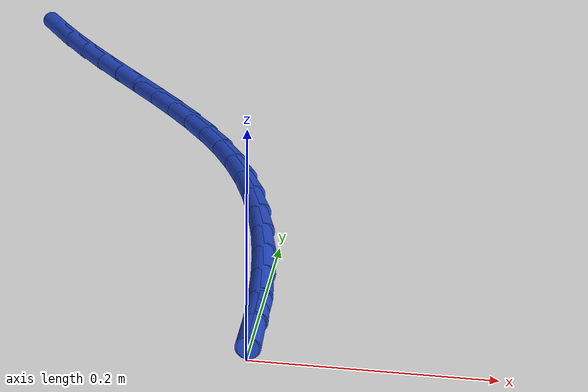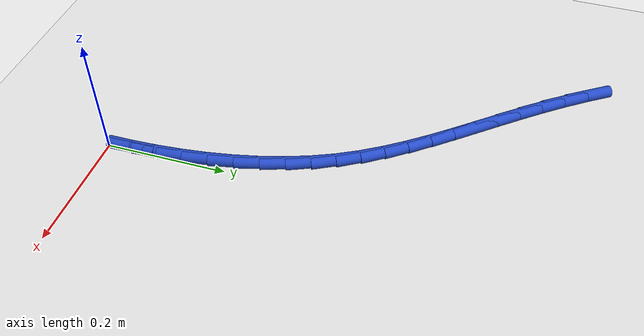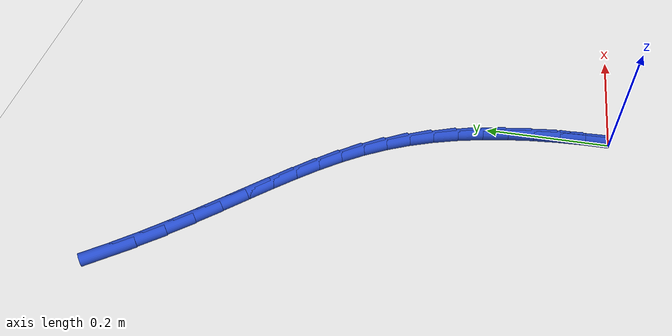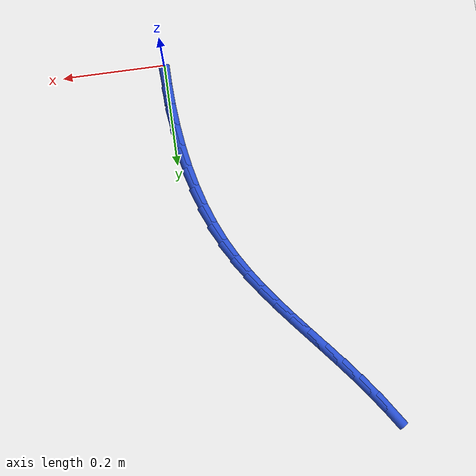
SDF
<sdf version="1.6">
 <world name="default">
  <model name="ground_plane">
   <static>1</static>
   <link name="link">
    <collision name="collision">
     <geometry><plane><normal>0 0 1</normal><size>100 100</size></plane></geometry>
     <surface><friction><ode><mu>100</mu><mu2>50</mu2></ode></friction></surface>
    </collision>
    <visual name="visual">
     <cast_shadows>0</cast_shadows>
     <geometry><plane><normal>0 0 1</normal><size>100 100</size></plane></geometry>
     <material>
      <script><uri>file://media/materials/scripts/gazebo.material</uri><name>Gazebo/WhiteGlow</name></script>
     </material>
    </visual>
   </link>
  </model>
  <model name="line">
   <link name="link_1">
    <pose>-0.00030403188105106426 0.04229881806253479 0.01 0 1.57 -1.5273704567349236</pose>
    <collision name="collision">
     <geometry><cylinder><radius>0.01</radius><length>0.08</length></cylinder></geometry>
    </collision>
    <visual name="visual">
     <material>
      <script><name>Gazebo/Blue</name><uri>file://media/materials/scripts/gazebo.material</uri></script>
     </material>
     <geometry><cylinder><radius>0.01</radius><length>0.08</length></cylinder></geometry>
    </visual>
   </link>
   <link name="link_2">
    <pose>-0.002140272123697122 0.08455671250576582 0.01 0 1.57 -1.4880241802549388</pose>
    <collision name="collision">
     <geometry><cylinder><radius>0.01</radius><length>0.08</length></cylinder></geometry>
    </collision>
    <visual name="visual">
     <material>
      <script><name>Gazebo/Blue</name><uri>file://media/materials/scripts/gazebo.material</uri></script>
     </material>
     <geometry><cylinder><radius>0.01</radius><length>0.08</length></cylinder></geometry>
    </visual>
   </link>
   <link name="link_3">
    <pose>-0.005625227665629827 0.12656351440490687 0.01 0 1.57 -1.4450910302844981</pose>
    <collision name="collision">
     <geometry><cylinder><radius>0.01</radius><length>0.08</length></cylinder></geometry>
    </collision>
    <visual name="visual">
     <material>
      <script><name>Gazebo/Blue</name><uri>file://media/materials/scripts/gazebo.material</uri></script>
     </material>
     <geometry><cylinder><radius>0.01</radius><length>0.08</length></cylinder></geometry>
    </visual>
   </link>
   <link name="link_4">
    <pose>-0.010875405444540843 0.1681090548351718 0.01 0 1.57 -1.398050688930605</pose>
    <collision name="collision">
     <geometry><cylinder><radius>0.01</radius><length>0.08</length></cylinder></geometry>
    </collision>
    <visual name="visual">
     <material>
      <script><name>Gazebo/Blue</name><uri>file://media/materials/scripts/gazebo.material</uri></script>
     </material>
     <geometry><cylinder><radius>0.01</radius><length>0.08</length></cylinder></geometry>
    </visual>
   </link>
   <link name="link_5">
    <pose>-0.018007312398121825 0.20898316487177454 0.01 0 1.57 -1.3463466222002347</pose>
    <collision name="collision">
     <geometry><cylinder><radius>0.01</radius><length>0.08</length></cylinder></geometry>
    </collision>
    <visual name="visual">
     <material>
      <script><name>Gazebo/Blue</name><uri>file://media/materials/scripts/gazebo.material</uri></script>
     </material>
     <geometry><cylinder><radius>0.01</radius><length>0.08</length></cylinder></geometry>
    </visual>
   </link>
   <link name="link_6">
    <pose>-0.02713745546406443 0.24897567558992892 0.01 0 1.57 -1.289400566973975</pose>
    <collision name="collision">
     <geometry><cylinder><radius>0.01</radius><length>0.08</length></cylinder></geometry>
    </collision>
    <visual name="visual">
     <material>
      <script><name>Gazebo/Blue</name><uri>file://media/materials/scripts/gazebo.material</uri></script>
     </material>
     <geometry><cylinder><radius>0.01</radius><length>0.08</length></cylinder></geometry>
    </visual>
   </link>
   <link name="link_7">
    <pose>-0.03838234158006031 0.28787641806484876 0.01 0 1.57 -1.2266408279061143</pose>
    <collision name="collision">
     <geometry><cylinder><radius>0.01</radius><length>0.08</length></cylinder></geometry>
    </collision>
    <visual name="visual">
     <material>
      <script><name>Gazebo/Blue</name><uri>file://media/materials/scripts/gazebo.material</uri></script>
     </material>
     <geometry><cylinder><radius>0.01</radius><length>0.08</length></cylinder></geometry>
    </visual>
   </link>
   <link name="link_8">
    <pose>-0.051858477683801155 0.32547522337174817 0.01 0 1.57 -1.1575497465611457</pose>
    <collision name="collision">
     <geometry><cylinder><radius>0.01</radius><length>0.08</length></cylinder></geometry>
    </collision>
    <visual name="visual">
     <material>
      <script><name>Gazebo/Blue</name><uri>file://media/materials/scripts/gazebo.material</uri></script>
     </material>
     <geometry><cylinder><radius>0.01</radius><length>0.08</length></cylinder></geometry>
    </visual>
   </link>
   <link name="link_9">
    <pose>-0.06768237066134959 0.3615619226563367 0.01 0 1.57 -1.0845055881657066</pose>
    <collision name="collision">
     <geometry><cylinder><radius>0.01</radius><length>0.08</length></cylinder></geometry>
    </collision>
    <visual name="visual">
     <material>
      <script><name>Gazebo/Blue</name><uri>file://media/materials/scripts/gazebo.material</uri></script>
     </material>
     <geometry><cylinder><radius>0.01</radius><length>0.08</length></cylinder></geometry>
    </visual>
   </link>
   <link name="link_10">
    <pose>-0.08589967834813804 0.3960230866803879 0.01 0 1.57 -1.0188755373688974</pose>
    <collision name="collision">
     <geometry><cylinder><radius>0.01</radius><length>0.08</length></cylinder></geometry>
    </collision>
    <visual name="visual">
     <material>
      <script><name>Gazebo/Blue</name><uri>file://media/materials/scripts/gazebo.material</uri></script>
     </material>
     <geometry><cylinder><radius>0.01</radius><length>0.08</length></cylinder></geometry>
    </visual>
   </link>
   <link name="link_11">
    <pose>-0.1062802775958039 0.429121846600665 0.01 0 1.57 -0.9646249978101762</pose>
    <collision name="collision">
     <geometry><cylinder><radius>0.01</radius><length>0.08</length></cylinder></geometry>
    </collision>
    <visual name="visual">
     <material>
      <script><name>Gazebo/Blue</name><uri>file://media/materials/scripts/gazebo.material</uri></script>
     </material>
     <geometry><cylinder><radius>0.01</radius><length>0.08</length></cylinder></geometry>
    </visual>
   </link>
   <link name="link_12">
    <pose>-0.12852695292763466 0.46121294363825344 0.01 0 1.57 -0.9224898749275928</pose>
    <collision name="collision">
     <geometry><cylinder><radius>0.01</radius><length>0.08</length></cylinder></geometry>
    </collision>
    <visual name="visual">
     <material>
      <script><name>Gazebo/Blue</name><uri>file://media/materials/scripts/gazebo.material</uri></script>
     </material>
     <geometry><cylinder><radius>0.01</radius><length>0.08</length></cylinder></geometry>
    </visual>
   </link>
   <link name="link_13">
    <pose>-0.15234248886691762 0.49265111901423847 0.01 0 1.57 -0.8926344642741078</pose>
    <collision name="collision">
     <geometry><cylinder><radius>0.01</radius><length>0.08</length></cylinder></geometry>
    </collision>
    <visual name="visual">
     <material>
      <script><name>Gazebo/Blue</name><uri>file://media/materials/scripts/gazebo.material</uri></script>
     </material>
     <geometry><cylinder><radius>0.01</radius><length>0.08</length></cylinder></geometry>
    </visual>
   </link>
   <link name="link_14">
    <pose>-0.1774296699369401 0.5237911139497056 0.01 0 1.57 -0.8748394649555942</pose>
    <collision name="collision">
     <geometry><cylinder><radius>0.01</radius><length>0.08</length></cylinder></geometry>
    </collision>
    <visual name="visual">
     <material>
      <script><name>Gazebo/Blue</name><uri>file://media/materials/scripts/gazebo.material</uri></script>
     </material>
     <geometry><cylinder><radius>0.01</radius><length>0.08</length></cylinder></geometry>
    </visual>
   </link>
   <link name="link_15">
    <pose>-0.20349128066098954 0.5549876696657402 0.01 0 1.57 -0.8686552928595721</pose>
    <collision name="collision">
     <geometry><cylinder><radius>0.01</radius><length>0.08</length></cylinder></geometry>
    </collision>
    <visual name="visual">
     <material>
      <script><name>Gazebo/Blue</name><uri>file://media/materials/scripts/gazebo.material</uri></script>
     </material>
     <geometry><cylinder><radius>0.01</radius><length>0.08</length></cylinder></geometry>
    </visual>
   </link>
   <link name="link_16">
    <pose>-0.23023010556235338 0.5865955273834276 0.01 0 1.57 -0.8735009277398005</pose>
    <collision name="collision">
     <geometry><cylinder><radius>0.01</radius><length>0.08</length></cylinder></geometry>
    </collision>
    <visual name="visual">
     <material>
      <script><name>Gazebo/Blue</name><uri>file://media/materials/scripts/gazebo.material</uri></script>
     </material>
     <geometry><cylinder><radius>0.01</radius><length>0.08</length></cylinder></geometry>
    </visual>
   </link>
   <link name="link_17">
    <pose>-0.25734892916431884 0.6189694283238532 0.01 0 1.57 -0.8887104548957693</pose>
    <collision name="collision">
     <geometry><cylinder><radius>0.01</radius><length>0.08</length></cylinder></geometry>
    </collision>
    <visual name="visual">
     <material>
      <script><name>Gazebo/Blue</name><uri>file://media/materials/scripts/gazebo.material</uri></script>
     </material>
     <geometry><cylinder><radius>0.01</radius><length>0.08</length></cylinder></geometry>
    </visual>
   </link>
   <link name="link_18">
    <pose>-0.2845505359901733 0.6524641137081022 0.01 0 1.57 -0.9135393723879417</pose>
    <collision name="collision">
     <geometry><cylinder><radius>0.01</radius><length>0.08</length></cylinder></geometry>
    </collision>
    <visual name="visual">
     <material>
      <script><name>Gazebo/Blue</name><uri>file://media/materials/scripts/gazebo.material</uri></script>
     </material>
     <geometry><cylinder><radius>0.01</radius><length>0.08</length></cylinder></geometry>
    </visual>
   </link>
   <link name="link_19">
    <pose>-0.31153771056320423 0.6874343247572603 0.01 0 1.57 -0.9464577211058722</pose>
    <collision name="collision">
     <geometry><cylinder><radius>0.01</radius><length>0.08</length></cylinder></geometry>
    </collision>
    <visual name="visual">
     <material>
      <script><name>Gazebo/Blue</name><uri>file://media/materials/scripts/gazebo.material</uri></script>
     </material>
     <geometry><cylinder><radius>0.01</radius><length>0.08</length></cylinder></geometry>
    </visual>
   </link>
   <link name="link_20">
    <pose>-0.33802834882138205 0.7242024044399585 0.01 0 1.57 -0.9755999037970234</pose>
    <collision name="collision">
     <geometry><cylinder><radius>0.01</radius><length>0.08</length></cylinder></geometry>
    </collision>
    <visual name="visual">
     <material>
      <script><name>Gazebo/Blue</name><uri>file://media/materials/scripts/gazebo.material</uri></script>
     </material>
     <geometry><cylinder><radius>0.01</radius><length>0.08</length></cylinder></geometry>
    </visual>
   </link>
   <link name="link_171">
    <pose>-0.0002756676424877681 0.04231764208897096 0.01 0 1.57 -1.5642821702960854</pose>
    <collision name="collision">
     <geometry><cylinder><radius>0.01</radius><length>0.08</length></cylinder></geometry>
    </collision>
    <visual name="visual">
     <material>
      <script><name>Gazebo/Blue</name><uri>file://media/materials/scripts/gazebo.material</uri></script>
     </material>
     <geometry><cylinder><radius>0.01</radius><length>0.08</length></cylinder></geometry>
    </visual>
   </link>
  </model>
 </world>
</sdf>
